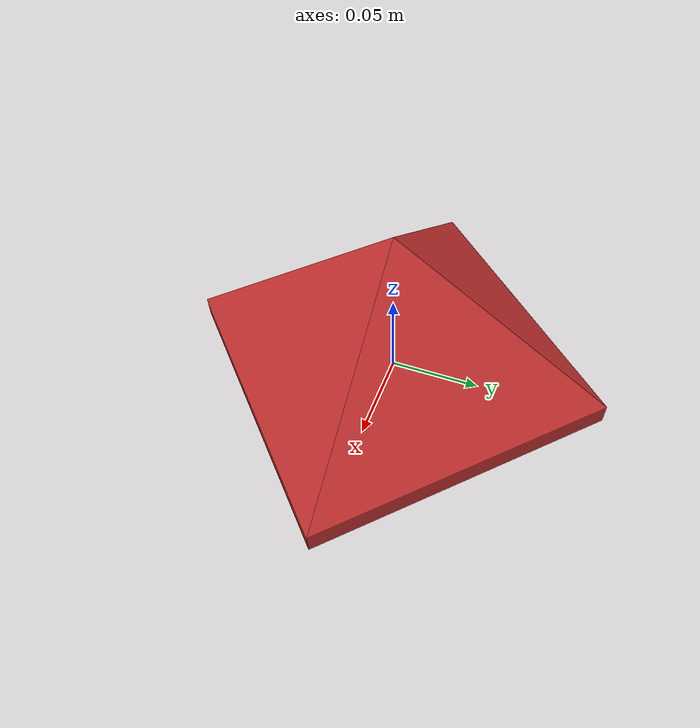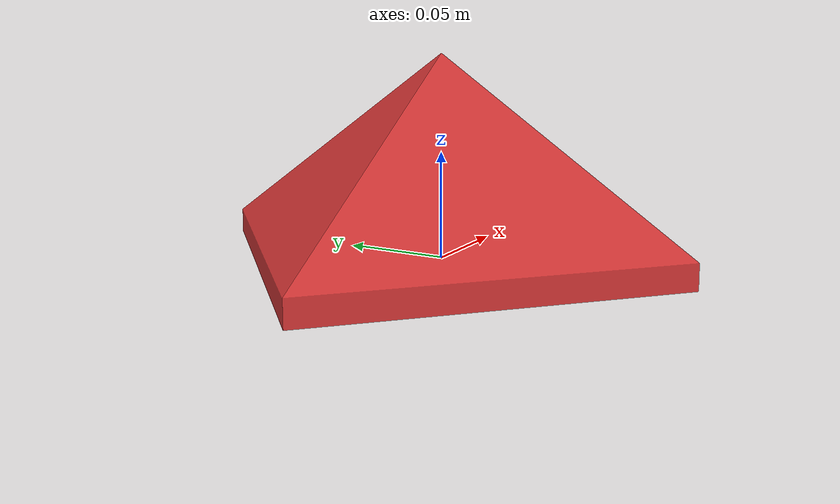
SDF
<?xml version="1.0"?>
<sdf version="1.7">
  <model name="hat_variant">
    <link name="hat_variant_link">
      <inertial>
        <mass>1.5</mass>
        <inertia>
          <ixx>0.075</ixx>
          <iyy>0.075</iyy>
          <izz>0.09</izz>
          <ixy>0.0</ixy>
          <ixz>0.0</ixz>
          <iyz>0.0</iyz>
        </inertia>
      </inertial>
      <visual name="hat_variant_visual">
        <geometry>
          <mesh>
            <uri>hat.obj</uri>
            <scale>0.12 0.12 0.12</scale>
          </mesh>
        </geometry>
        <material>
          <diffuse>0.8 0.2 0.2 1</diffuse>
          <ambient>0.3 0.1 0.1 1</ambient>
        </material>
      </visual>
    </link>
  </model>
</sdf>
